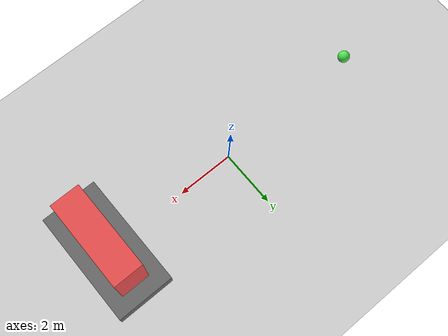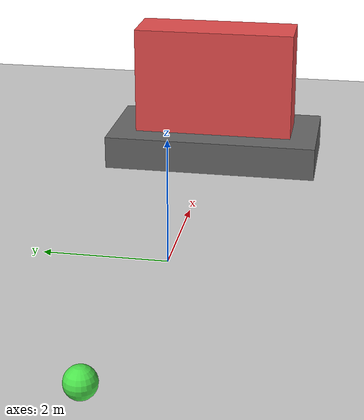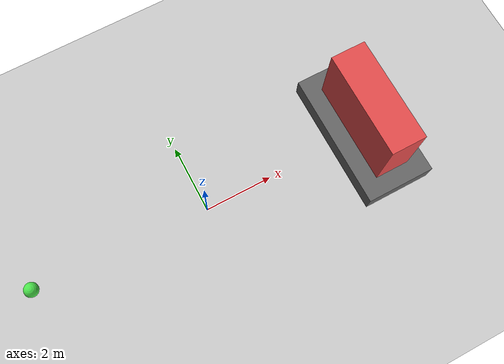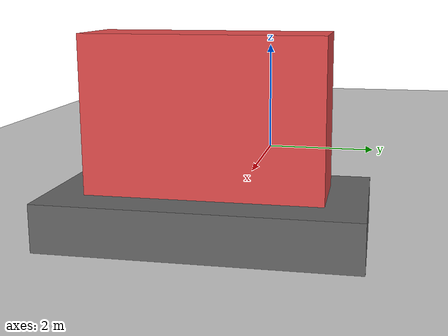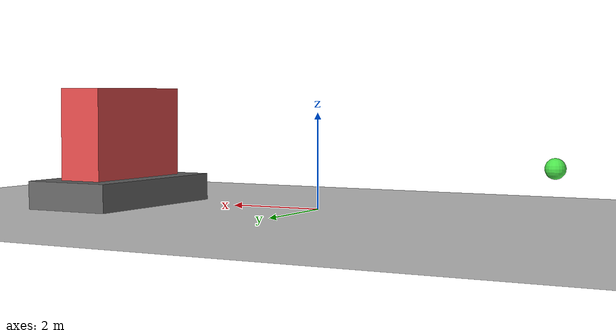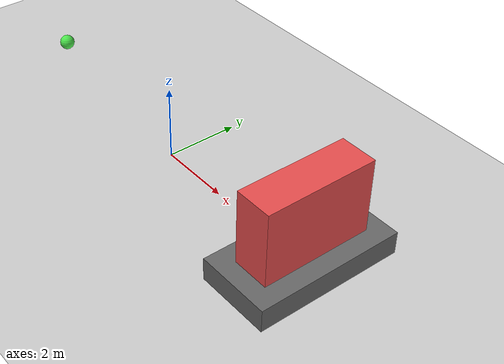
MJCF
<mujoco>
  <option gravity="0 0 -9.81"/>
  <worldbody>
    <body name="platform" pos="5 0 0">
      <geom type="box" size="1 2 0.5" rgba="0.4 0.4 0.4 1"/>
    </body>
    <body name="obstacle" pos="5 0 1.0">
      <geom type="box" size="0.5 1.5 1.5" rgba="0.9 0.3 0.3 1"/>
    </body>
    <body name="ground" pos="0 0 -0.1">
      <geom type="plane" size="30 30 0.1" rgba="0.8 0.8 0.8 1"/>
    </body>
    <body name="projectile" pos="-5 0 1">
      <geom type="sphere" size="0.2" density="1" rgba="0.3 0.9 0.3 1"/>
      <joint type="free"/>
    </body>
  </worldbody>
</mujoco>
